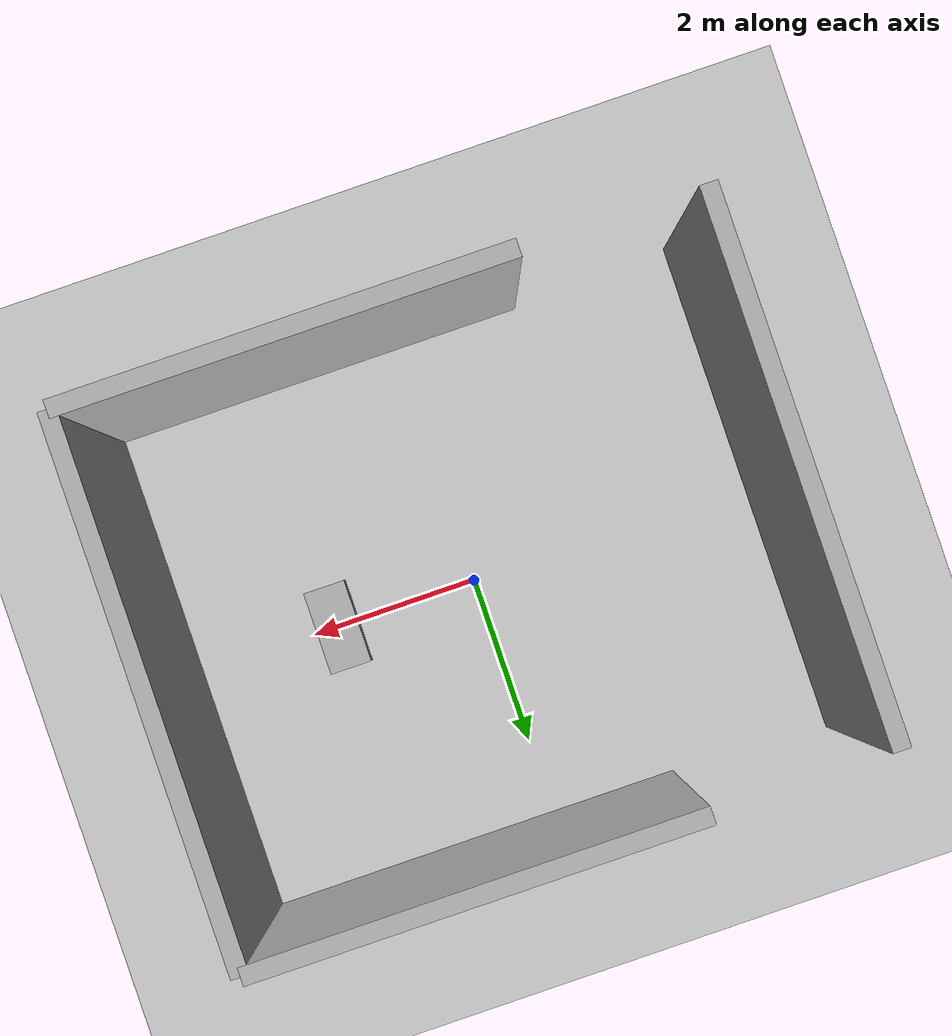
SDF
<sdf version="1.9">
 <world name="default">
  <physics type="ode">
   <max_step_size>0.004</max_step_size>
   <real_time_factor>1.0</real_time_factor>
   <real_time_update_rate>250</real_time_update_rate>
  </physics>
  <gravity>0 0 -9.8</gravity>
  <magnetic_field>6e-06 2.3e-05 -4.2e-05</magnetic_field>
  <atmosphere type="adiabatic"/>
  <scene>
   <grid>false</grid>
   <ambient>0.4 0.4 0.4 1</ambient>
   <background>0.7 0.7 0.7 1</background>
   <shadows>true</shadows>
  </scene>
  <scene><ambient>0.8 0.8 0.8</ambient><grid>false</grid></scene>
  <model name="ground_plane">
   <static>true</static>
   <link name="link">
    <collision name="collision">
     <geometry><plane><normal>0 0 1</normal><size>1 1</size></plane></geometry>
    </collision>
    <visual name="visual">
     <geometry><plane><normal>0 0 1</normal><size>30 30</size></plane></geometry>
     <material>
      <ambient>0.8 0.8 0.8 1</ambient>
      <diffuse>0.8 0.8 0.8 1</diffuse>
      <specular>0.8 0.8 0.8 1</specular>
     </material>
    </visual>
    <inertial>
     <mass>1</mass>
     <inertia><ixx>1</ixx><ixy>0</ixy><ixz>0</ixz><iyy>1</iyy><iyz>0</iyz><izz>1</izz></inertia>
    </inertial>
   </link>
  </model>
  <light name="sunUTC" type="directional">
   <pose>0 0 500 0 -0 0</pose>
   <intensity>1</intensity>
   <direction>0.001 0.625 -0.78</direction>
   <diffuse>0.904 0.904 0.904 1</diffuse>
   <specular>0.271 0.271 0.271 1</specular>
   <attenuation><range>2000</range><linear>0</linear><constant>1</constant><quadratic>0</quadratic></attenuation>
   <spot><inner_angle>0</inner_angle><outer_angle>0</outer_angle><falloff>0</falloff></spot>
  </light>
  <spherical_coordinates>
   <surface_model>EARTH_WGS84</surface_model>
   <world_frame_orientation>ENU</world_frame_orientation>
   <latitude_deg>47.397971057728974</latitude_deg>
   <longitude_deg>8.546163739800146</longitude_deg>
   <elevation>0</elevation>
  </spherical_coordinates>
  <model name="muro_1">
   <static>true</static>
   <pose>1 3 1.5 0 0 0</pose>
   <link name="link">
    <collision name="collision"><geometry><box><size>5 0.2 3</size></box></geometry></collision>
    <visual name="visual">
     <geometry><box><size>5 0.2 3</size></box></geometry>
     <material><ambient>0.5 0.5 0.5 1</ambient><diffuse>0.7 0.7 0.7 1</diffuse></material>
    </visual>
   </link>
  </model>
  <model name="muro_2">
   <static>true</static>
   <pose>1 -3 1.5 0 0 0</pose>
   <link name="link">
    <collision name="collision"><geometry><box><size>5 0.2 3</size></box></geometry></collision>
    <visual name="visual">
     <geometry><box><size>5 0.2 3</size></box></geometry>
     <material><ambient>0.5 0.5 0.5 1</ambient><diffuse>0.7 0.7 0.7 1</diffuse></material>
    </visual>
   </link>
  </model>
  <model name="muro_3">
   <static>true</static>
   <pose>3.5 0 1.5 0 0 1.57</pose>
   <link name="link">
    <collision name="collision"><geometry><box><size>6 0.2 3</size></box></geometry></collision>
    <visual name="visual">
     <geometry><box><size>6 0.2 3</size></box></geometry>
     <material><ambient>0.5 0.5 0.5 1</ambient><diffuse>0.7 0.7 0.7 1</diffuse></material>
    </visual>
   </link>
  </model>
  <model name="muro_4">
   <static>true</static>
   <pose>-3.5 0 1.5 0 0 1.57</pose>
   <link name="link">
    <collision name="collision"><geometry><box><size>6 0.2 3</size></box></geometry></collision>
    <visual name="visual">
     <geometry><box><size>6 0.2 3</size></box></geometry>
     <material><ambient>0.5 0.5 0.5 1</ambient><diffuse>0.7 0.7 0.7 1</diffuse></material>
    </visual>
   </link>
  </model>
  <model name="tavolo">
   <static>true</static>
   <pose>1.7 0 0.125 0 0 0</pose>
   <link name="link">
    <collision name="collision"><geometry><box><size>0.5 1 0.25</size></box></geometry></collision>
    <visual name="visual">
     <geometry><box><size>0.5 1 0.25</size></box></geometry>
     <material><ambient>0.5 0.5 0.5 1</ambient><diffuse>0.7 0.7 0.7 1</diffuse></material>
    </visual>
   </link>
  </model>
 </world>
</sdf>
